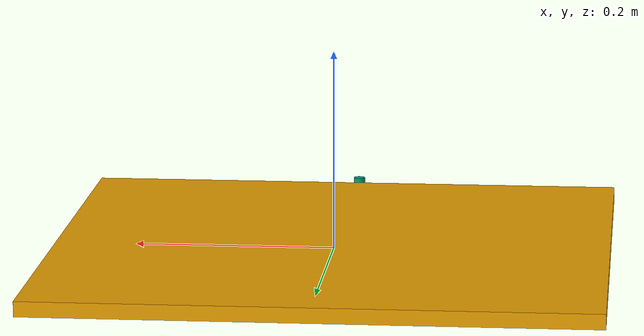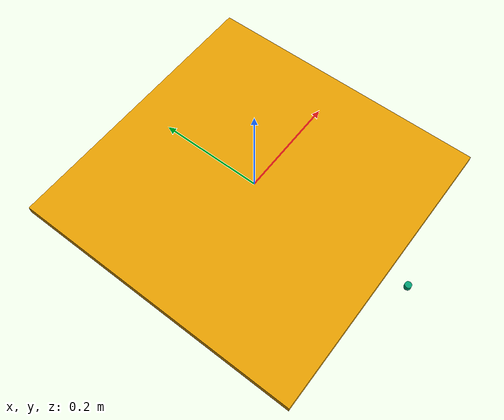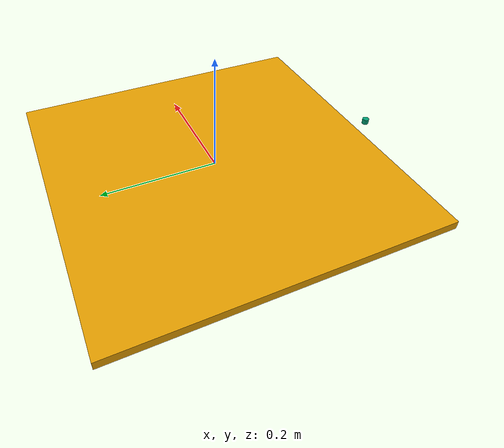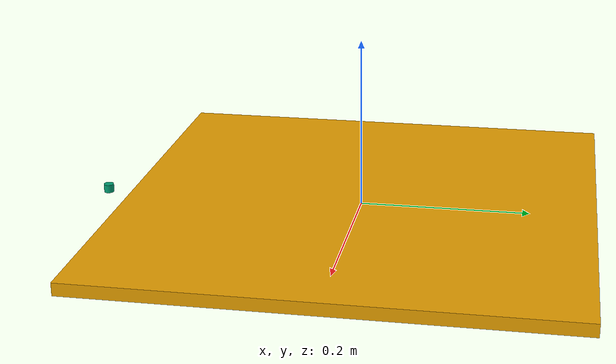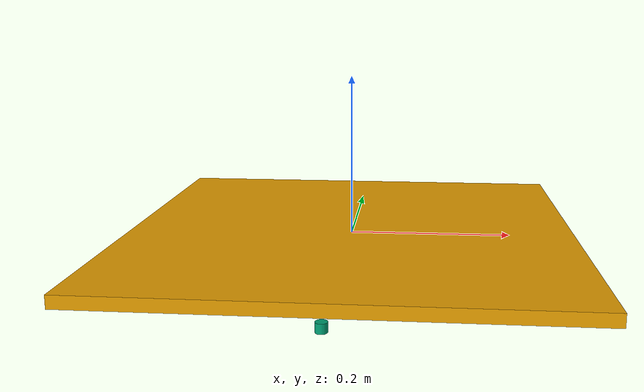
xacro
<?xml version="1.0"?>
<robot name="nav_omni4">
    <link name="base_link">
        <visual>
            <geometry>
                <box size="0.555 0.555 0.015"/>
            </geometry>
        </visual>
    </link>

    <link name="base_footprint"/>

    <joint name="base_joint" type="fixed">
        <parent link="base_link"/>
        <child link="base_footprint"/>
        <origin xyz="0 0 -0.09" rpy="0 0 0"/>
    </joint>

    <link name="lidar_link">
        <visual>
            <geometry>
                <cylinder radius="0.006" length="0.01"/>
            </geometry>
        </visual>
    </link>

    <joint name="lidar_joint" type="fixed">
        <parent link="base_link"/>
        <child link="lidar_link"/>
        <origin xyz="0 -0.3155 0" rpy="3.14 0 -1.57"/>
    </joint>
</robot>
